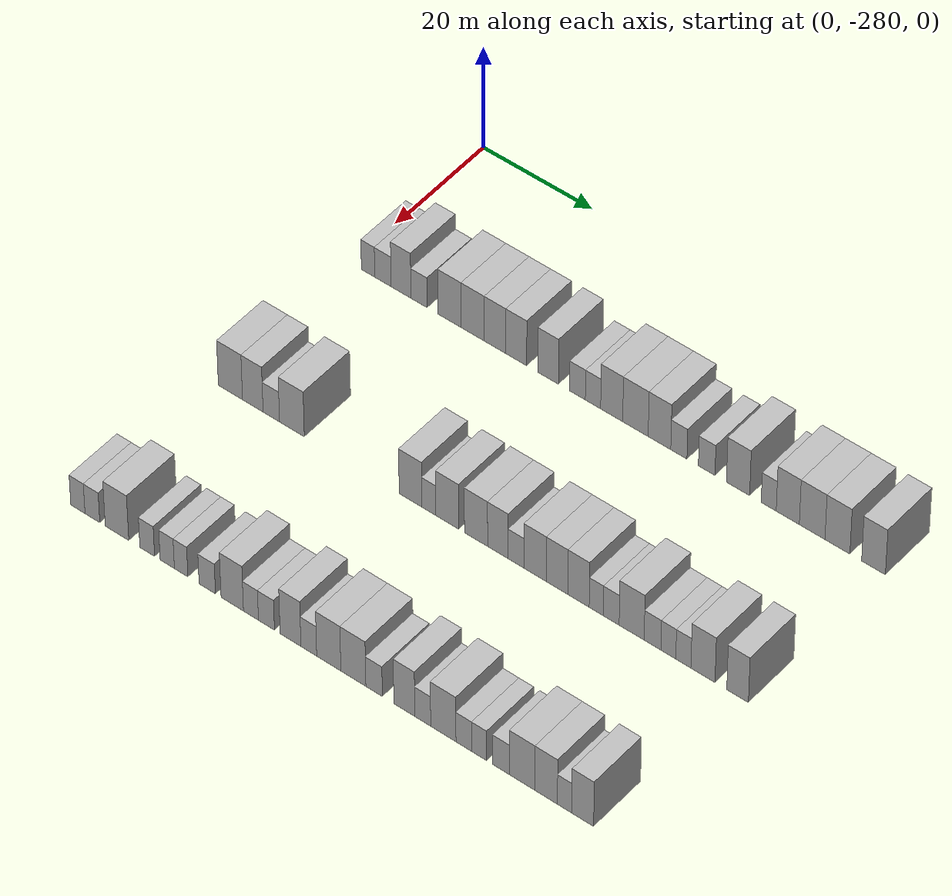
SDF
<sdf version="1.6">
 <world name="default">
  <model name="building_1">
   <static>1</static>
   <pose>25.0000 -276.7724 0 0.000000 0.000000 0.000000</pose>
   <link name="link">
    <pose>0 0 3.00 0 0 0</pose>
    <collision name="collision"><geometry><box><size>10.0000 2.4551 6.0000</size></box></geometry></collision>
    <visual name="visual">
     <cast_shadows>0</cast_shadows>
     <geometry><box><size>10.0000 2.4551 6.0000</size></box></geometry>
     <material>
      <script>
       <uri>model://HANNAS_wall/materials/scripts</uri>
       <uri>model://HANNAS_wall/materials/textures</uri>
       <name>vrc/HANNAS_wall</name>
      </script>
     </material>
    </visual>
   </link>
  </model>
  <model name="building_2">
   <static>1</static>
   <pose>25.0000 -274.0450 0 0.000000 0.000000 0.000000</pose>
   <link name="link">
    <pose>0 0 3.00 0 0 0</pose>
    <collision name="collision"><geometry><box><size>10.0000 2.9998 6.0000</size></box></geometry></collision>
    <visual name="visual">
     <cast_shadows>0</cast_shadows>
     <geometry><box><size>10.0000 2.9998 6.0000</size></box></geometry>
     <material>
      <script>
       <uri>model://HANNAS_wall/materials/scripts</uri>
       <uri>model://HANNAS_wall/materials/textures</uri>
       <name>vrc/HANNAS_wall</name>
      </script>
     </material>
    </visual>
   </link>
  </model>
  <model name="building_3">
   <static>1</static>
   <pose>25.0000 -270.7300 0 0.000000 0.000000 0.000000</pose>
   <link name="link">
    <pose>0 0 4.50 0 0 0</pose>
    <collision name="collision"><geometry><box><size>10.0000 3.6301 9.0000</size></box></geometry></collision>
    <visual name="visual">
     <cast_shadows>0</cast_shadows>
     <geometry><box><size>10.0000 3.6301 9.0000</size></box></geometry>
     <material>
      <script>
       <uri>model://HANNAS_wall/materials/scripts</uri>
       <uri>model://HANNAS_wall/materials/textures</uri>
       <name>vrc/HANNAS_wall</name>
      </script>
     </material>
    </visual>
   </link>
  </model>
  <model name="building_4">
   <static>1</static>
   <pose>25.0000 -267.4291 0 0.000000 0.000000 0.000000</pose>
   <link name="link">
    <pose>0 0 3.00 0 0 0</pose>
    <collision name="collision"><geometry><box><size>10.0000 2.9718 6.0000</size></box></geometry></collision>
    <visual name="visual">
     <cast_shadows>0</cast_shadows>
     <geometry><box><size>10.0000 2.9718 6.0000</size></box></geometry>
     <material>
      <script>
       <uri>model://HANNAS_wall/materials/scripts</uri>
       <uri>model://HANNAS_wall/materials/textures</uri>
       <name>vrc/HANNAS_wall</name>
      </script>
     </material>
    </visual>
   </link>
  </model>
  <model name="building_5">
   <static>1</static>
   <pose>25.0000 -261.8477 0 0.000000 0.000000 0.000000</pose>
   <link name="link">
    <pose>0 0 4.50 0 0 0</pose>
    <collision name="collision"><geometry><box><size>10.0000 4.1910 9.0000</size></box></geometry></collision>
    <visual name="visual">
     <cast_shadows>0</cast_shadows>
     <geometry><box><size>10.0000 4.1910 9.0000</size></box></geometry>
     <material>
      <script>
       <uri>model://HANNAS_wall/materials/scripts</uri>
       <uri>model://HANNAS_wall/materials/textures</uri>
       <name>vrc/HANNAS_wall</name>
      </script>
     </material>
    </visual>
   </link>
  </model>
  <model name="building_6">
   <static>1</static>
   <pose>25.0000 -257.6668 0 0.000000 0.000000 0.000000</pose>
   <link name="link">
    <pose>0 0 4.50 0 0 0</pose>
    <collision name="collision"><geometry><box><size>10.0000 4.1707 9.0000</size></box></geometry></collision>
    <visual name="visual">
     <cast_shadows>0</cast_shadows>
     <geometry><box><size>10.0000 4.1707 9.0000</size></box></geometry>
     <material>
      <script>
       <uri>model://HANNAS_wall/materials/scripts</uri>
       <uri>model://HANNAS_wall/materials/textures</uri>
       <name>vrc/HANNAS_wall</name>
      </script>
     </material>
    </visual>
   </link>
  </model>
  <model name="building_7">
   <static>1</static>
   <pose>25.0000 -253.6388 0 0.000000 0.000000 0.000000</pose>
   <link name="link">
    <pose>0 0 4.50 0 0 0</pose>
    <collision name="collision"><geometry><box><size>10.0000 3.8853 9.0000</size></box></geometry></collision>
    <visual name="visual">
     <cast_shadows>0</cast_shadows>
     <geometry><box><size>10.0000 3.8853 9.0000</size></box></geometry>
     <material>
      <script>
       <uri>model://HANNAS_wall/materials/scripts</uri>
       <uri>model://HANNAS_wall/materials/textures</uri>
       <name>vrc/HANNAS_wall</name>
      </script>
     </material>
    </visual>
   </link>
  </model>
  <model name="building_8">
   <static>1</static>
   <pose>25.0000 -249.8201 0 0.000000 0.000000 0.000000</pose>
   <link name="link">
    <pose>0 0 4.50 0 0 0</pose>
    <collision name="collision"><geometry><box><size>10.0000 3.7521 9.0000</size></box></geometry></collision>
    <visual name="visual">
     <cast_shadows>0</cast_shadows>
     <geometry><box><size>10.0000 3.7521 9.0000</size></box></geometry>
     <material>
      <script>
       <uri>model://HANNAS_wall/materials/scripts</uri>
       <uri>model://HANNAS_wall/materials/textures</uri>
       <name>vrc/HANNAS_wall</name>
      </script>
     </material>
    </visual>
   </link>
  </model>
  <model name="building_9">
   <static>1</static>
   <pose>25.0000 -244.1011 0 0.000000 0.000000 0.000000</pose>
   <link name="link">
    <pose>0 0 4.50 0 0 0</pose>
    <collision name="collision"><geometry><box><size>10.0000 3.6858 9.0000</size></box></geometry></collision>
    <visual name="visual">
     <cast_shadows>0</cast_shadows>
     <geometry><box><size>10.0000 3.6858 9.0000</size></box></geometry>
     <material>
      <script>
       <uri>model://HANNAS_wall/materials/scripts</uri>
       <uri>model://HANNAS_wall/materials/textures</uri>
       <name>vrc/HANNAS_wall</name>
      </script>
     </material>
    </visual>
   </link>
  </model>
  <model name="building_10">
   <static>1</static>
   <pose>25.0000 -238.8640 0 0.000000 0.000000 0.000000</pose>
   <link name="link">
    <pose>0 0 3.00 0 0 0</pose>
    <collision name="collision"><geometry><box><size>10.0000 2.7885 6.0000</size></box></geometry></collision>
    <visual name="visual">
     <cast_shadows>0</cast_shadows>
     <geometry><box><size>10.0000 2.7885 6.0000</size></box></geometry>
     <material>
      <script>
       <uri>model://HANNAS_wall/materials/scripts</uri>
       <uri>model://HANNAS_wall/materials/textures</uri>
       <name>vrc/HANNAS_wall</name>
      </script>
     </material>
    </visual>
   </link>
  </model>
  <model name="building_11">
   <static>1</static>
   <pose>25.0000 -236.1084 0 0.000000 0.000000 0.000000</pose>
   <link name="link">
    <pose>0 0 3.00 0 0 0</pose>
    <collision name="collision"><geometry><box><size>10.0000 2.7226 6.0000</size></box></geometry></collision>
    <visual name="visual">
     <cast_shadows>0</cast_shadows>
     <geometry><box><size>10.0000 2.7226 6.0000</size></box></geometry>
     <material>
      <script>
       <uri>model://HANNAS_wall/materials/scripts</uri>
       <uri>model://HANNAS_wall/materials/textures</uri>
       <name>vrc/HANNAS_wall</name>
      </script>
     </material>
    </visual>
   </link>
  </model>
  <model name="building_12">
   <static>1</static>
   <pose>25.0000 -232.7931 0 0.000000 0.000000 0.000000</pose>
   <link name="link">
    <pose>0 0 4.50 0 0 0</pose>
    <collision name="collision"><geometry><box><size>10.0000 3.9082 9.0000</size></box></geometry></collision>
    <visual name="visual">
     <cast_shadows>0</cast_shadows>
     <geometry><box><size>10.0000 3.9082 9.0000</size></box></geometry>
     <material>
      <script>
       <uri>model://HANNAS_wall/materials/scripts</uri>
       <uri>model://HANNAS_wall/materials/textures</uri>
       <name>vrc/HANNAS_wall</name>
      </script>
     </material>
    </visual>
   </link>
  </model>
  <model name="building_13">
   <static>1</static>
   <pose>25.0000 -228.5908 0 0.000000 0.000000 0.000000</pose>
   <link name="link">
    <pose>0 0 4.50 0 0 0</pose>
    <collision name="collision"><geometry><box><size>10.0000 4.4964 9.0000</size></box></geometry></collision>
    <visual name="visual">
     <cast_shadows>0</cast_shadows>
     <geometry><box><size>10.0000 4.4964 9.0000</size></box></geometry>
     <material>
      <script>
       <uri>model://HANNAS_wall/materials/scripts</uri>
       <uri>model://HANNAS_wall/materials/textures</uri>
       <name>vrc/HANNAS_wall</name>
      </script>
     </material>
    </visual>
   </link>
  </model>
  <model name="building_14">
   <static>1</static>
   <pose>25.0000 -224.3549 0 0.000000 0.000000 0.000000</pose>
   <link name="link">
    <pose>0 0 4.50 0 0 0</pose>
    <collision name="collision"><geometry><box><size>10.0000 3.9754 9.0000</size></box></geometry></collision>
    <visual name="visual">
     <cast_shadows>0</cast_shadows>
     <geometry><box><size>10.0000 3.9754 9.0000</size></box></geometry>
     <material>
      <script>
       <uri>model://HANNAS_wall/materials/scripts</uri>
       <uri>model://HANNAS_wall/materials/textures</uri>
       <name>vrc/HANNAS_wall</name>
      </script>
     </material>
    </visual>
   </link>
  </model>
  <model name="building_15">
   <static>1</static>
   <pose>25.0000 -220.9475 0 0.000000 0.000000 0.000000</pose>
   <link name="link">
    <pose>0 0 3.00 0 0 0</pose>
    <collision name="collision"><geometry><box><size>10.0000 2.8393 6.0000</size></box></geometry></collision>
    <visual name="visual">
     <cast_shadows>0</cast_shadows>
     <geometry><box><size>10.0000 2.8393 6.0000</size></box></geometry>
     <material>
      <script>
       <uri>model://HANNAS_wall/materials/scripts</uri>
       <uri>model://HANNAS_wall/materials/textures</uri>
       <name>vrc/HANNAS_wall</name>
      </script>
     </material>
    </visual>
   </link>
  </model>
  <model name="building_16">
   <static>1</static>
   <pose>25.0000 -216.0794 0 0.000000 0.000000 0.000000</pose>
   <link name="link">
    <pose>0 0 3.00 0 0 0</pose>
    <collision name="collision"><geometry><box><size>10.0000 2.8969 6.0000</size></box></geometry></collision>
    <visual name="visual">
     <cast_shadows>0</cast_shadows>
     <geometry><box><size>10.0000 2.8969 6.0000</size></box></geometry>
     <material>
      <script>
       <uri>model://HANNAS_wall/materials/scripts</uri>
       <uri>model://HANNAS_wall/materials/textures</uri>
       <name>vrc/HANNAS_wall</name>
      </script>
     </material>
    </visual>
   </link>
  </model>
  <model name="building_17">
   <static>1</static>
   <pose>25.0000 -210.6145 0 0.000000 0.000000 0.000000</pose>
   <link name="link">
    <pose>0 0 4.50 0 0 0</pose>
    <collision name="collision"><geometry><box><size>10.0000 4.0329 9.0000</size></box></geometry></collision>
    <visual name="visual">
     <cast_shadows>0</cast_shadows>
     <geometry><box><size>10.0000 4.0329 9.0000</size></box></geometry>
     <material>
      <script>
       <uri>model://HANNAS_wall/materials/scripts</uri>
       <uri>model://HANNAS_wall/materials/textures</uri>
       <name>vrc/HANNAS_wall</name>
      </script>
     </material>
    </visual>
   </link>
  </model>
  <model name="building_18">
   <static>1</static>
   <pose>25.0000 -205.2983 0 0.000000 0.000000 0.000000</pose>
   <link name="link">
    <pose>0 0 3.00 0 0 0</pose>
    <collision name="collision"><geometry><box><size>10.0000 2.5995 6.0000</size></box></geometry></collision>
    <visual name="visual">
     <cast_shadows>0</cast_shadows>
     <geometry><box><size>10.0000 2.5995 6.0000</size></box></geometry>
     <material>
      <script>
       <uri>model://HANNAS_wall/materials/scripts</uri>
       <uri>model://HANNAS_wall/materials/textures</uri>
       <name>vrc/HANNAS_wall</name>
      </script>
     </material>
    </visual>
   </link>
  </model>
  <model name="building_19">
   <static>1</static>
   <pose>25.0000 -202.0076 0 0.000000 0.000000 0.000000</pose>
   <link name="link">
    <pose>0 0 4.50 0 0 0</pose>
    <collision name="collision"><geometry><box><size>10.0000 3.9819 9.0000</size></box></geometry></collision>
    <visual name="visual">
     <cast_shadows>0</cast_shadows>
     <geometry><box><size>10.0000 3.9819 9.0000</size></box></geometry>
     <material>
      <script>
       <uri>model://HANNAS_wall/materials/scripts</uri>
       <uri>model://HANNAS_wall/materials/textures</uri>
       <name>vrc/HANNAS_wall</name>
      </script>
     </material>
    </visual>
   </link>
  </model>
  <model name="building_20">
   <static>1</static>
   <pose>25.0000 -197.8102 0 0.000000 0.000000 0.000000</pose>
   <link name="link">
    <pose>0 0 4.50 0 0 0</pose>
    <collision name="collision"><geometry><box><size>10.0000 4.4129 9.0000</size></box></geometry></collision>
    <visual name="visual">
     <cast_shadows>0</cast_shadows>
     <geometry><box><size>10.0000 4.4129 9.0000</size></box></geometry>
     <material>
      <script>
       <uri>model://HANNAS_wall/materials/scripts</uri>
       <uri>model://HANNAS_wall/materials/textures</uri>
       <name>vrc/HANNAS_wall</name>
      </script>
     </material>
    </visual>
   </link>
  </model>
  <model name="building_21">
   <static>1</static>
   <pose>25.0000 -193.4685 0 0.000000 0.000000 0.000000</pose>
   <link name="link">
    <pose>0 0 4.50 0 0 0</pose>
    <collision name="collision"><geometry><box><size>10.0000 4.2705 9.0000</size></box></geometry></collision>
    <visual name="visual">
     <cast_shadows>0</cast_shadows>
     <geometry><box><size>10.0000 4.2705 9.0000</size></box></geometry>
     <material>
      <script>
       <uri>model://HANNAS_wall/materials/scripts</uri>
       <uri>model://HANNAS_wall/materials/textures</uri>
       <name>vrc/HANNAS_wall</name>
      </script>
     </material>
    </visual>
   </link>
  </model>
  <model name="building_22">
   <static>1</static>
   <pose>25.0000 -187.3111 0 0.000000 0.000000 0.000000</pose>
   <link name="link">
    <pose>0 0 4.50 0 0 0</pose>
    <collision name="collision"><geometry><box><size>10.0000 4.0444 9.0000</size></box></geometry></collision>
    <visual name="visual">
     <cast_shadows>0</cast_shadows>
     <geometry><box><size>10.0000 4.0444 9.0000</size></box></geometry>
     <material>
      <script>
       <uri>model://HANNAS_wall/materials/scripts</uri>
       <uri>model://HANNAS_wall/materials/textures</uri>
       <name>vrc/HANNAS_wall</name>
      </script>
     </material>
    </visual>
   </link>
  </model>
  <model name="building_140">
   <static>1</static>
   <pose>55.0000 -276.7888 0 0.000000 0.000000 0.000000</pose>
   <link name="link">
    <pose>0 0 4.50 0 0 0</pose>
    <collision name="collision"><geometry><box><size>10.0000 4.4224 9.0000</size></box></geometry></collision>
    <visual name="visual">
     <cast_shadows>0</cast_shadows>
     <geometry><box><size>10.0000 4.4224 9.0000</size></box></geometry>
     <material>
      <script>
       <uri>model://HANNAS_wall/materials/scripts</uri>
       <uri>model://HANNAS_wall/materials/textures</uri>
       <name>vrc/HANNAS_wall</name>
      </script>
     </material>
    </visual>
   </link>
  </model>
  <model name="building_141">
   <static>1</static>
   <pose>55.0000 -272.7049 0 0.000000 0.000000 0.000000</pose>
   <link name="link">
    <pose>0 0 4.50 0 0 0</pose>
    <collision name="collision"><geometry><box><size>10.0000 3.7455 9.0000</size></box></geometry></collision>
    <visual name="visual">
     <cast_shadows>0</cast_shadows>
     <geometry><box><size>10.0000 3.7455 9.0000</size></box></geometry>
     <material>
      <script>
       <uri>model://HANNAS_wall/materials/scripts</uri>
       <uri>model://HANNAS_wall/materials/textures</uri>
       <name>vrc/HANNAS_wall</name>
      </script>
     </material>
    </visual>
   </link>
  </model>
  <model name="building_142">
   <static>1</static>
   <pose>55.0000 -269.3329 0 0.000000 0.000000 0.000000</pose>
   <link name="link">
    <pose>0 0 3.00 0 0 0</pose>
    <collision name="collision"><geometry><box><size>10.0000 2.9984 6.0000</size></box></geometry></collision>
    <visual name="visual">
     <cast_shadows>0</cast_shadows>
     <geometry><box><size>10.0000 2.9984 6.0000</size></box></geometry>
     <material>
      <script>
       <uri>model://HANNAS_wall/materials/scripts</uri>
       <uri>model://HANNAS_wall/materials/textures</uri>
       <name>vrc/HANNAS_wall</name>
      </script>
     </material>
    </visual>
   </link>
  </model>
  <model name="building_143">
   <static>1</static>
   <pose>55.0000 -265.5855 0 0.000000 0.000000 0.000000</pose>
   <link name="link">
    <pose>0 0 4.50 0 0 0</pose>
    <collision name="collision"><geometry><box><size>10.0000 4.4965 9.0000</size></box></geometry></collision>
    <visual name="visual">
     <cast_shadows>0</cast_shadows>
     <geometry><box><size>10.0000 4.4965 9.0000</size></box></geometry>
     <material>
      <script>
       <uri>model://HANNAS_wall/materials/scripts</uri>
       <uri>model://HANNAS_wall/materials/textures</uri>
       <name>vrc/HANNAS_wall</name>
      </script>
     </material>
    </visual>
   </link>
  </model>
  <model name="building_144">
   <static>1</static>
   <pose>55.0000 -244.2856 0 0.000000 0.000000 0.000000</pose>
   <link name="link">
    <pose>0 0 4.50 0 0 0</pose>
    <collision name="collision"><geometry><box><size>10.0000 4.0345 9.0000</size></box></geometry></collision>
    <visual name="visual">
     <cast_shadows>0</cast_shadows>
     <geometry><box><size>10.0000 4.0345 9.0000</size></box></geometry>
     <material>
      <script>
       <uri>model://HANNAS_wall/materials/scripts</uri>
       <uri>model://HANNAS_wall/materials/textures</uri>
       <name>vrc/HANNAS_wall</name>
      </script>
     </material>
    </visual>
   </link>
  </model>
  <model name="building_145">
   <static>1</static>
   <pose>55.0000 -241.0254 0 0.000000 0.000000 0.000000</pose>
   <link name="link">
    <pose>0 0 3.00 0 0 0</pose>
    <collision name="collision"><geometry><box><size>10.0000 2.4859 6.0000</size></box></geometry></collision>
    <visual name="visual">
     <cast_shadows>0</cast_shadows>
     <geometry><box><size>10.0000 2.4859 6.0000</size></box></geometry>
     <material>
      <script>
       <uri>model://HANNAS_wall/materials/scripts</uri>
       <uri>model://HANNAS_wall/materials/textures</uri>
       <name>vrc/HANNAS_wall</name>
      </script>
     </material>
    </visual>
   </link>
  </model>
  <model name="building_146">
   <static>1</static>
   <pose>55.0000 -237.7533 0 0.000000 0.000000 0.000000</pose>
   <link name="link">
    <pose>0 0 4.50 0 0 0</pose>
    <collision name="collision"><geometry><box><size>10.0000 4.0582 9.0000</size></box></geometry></collision>
    <visual name="visual">
     <cast_shadows>0</cast_shadows>
     <geometry><box><size>10.0000 4.0582 9.0000</size></box></geometry>
     <material>
      <script>
       <uri>model://HANNAS_wall/materials/scripts</uri>
       <uri>model://HANNAS_wall/materials/textures</uri>
       <name>vrc/HANNAS_wall</name>
      </script>
     </material>
    </visual>
   </link>
  </model>
  <model name="building_147">
   <static>1</static>
   <pose>55.0000 -232.6905 0 0.000000 0.000000 0.000000</pose>
   <link name="link">
    <pose>0 0 4.50 0 0 0</pose>
    <collision name="collision"><geometry><box><size>10.0000 4.0676 9.0000</size></box></geometry></collision>
    <visual name="visual">
     <cast_shadows>0</cast_shadows>
     <geometry><box><size>10.0000 4.0676 9.0000</size></box></geometry>
     <material>
      <script>
       <uri>model://HANNAS_wall/materials/scripts</uri>
       <uri>model://HANNAS_wall/materials/textures</uri>
       <name>vrc/HANNAS_wall</name>
      </script>
     </material>
    </visual>
   </link>
  </model>
  <model name="building_148">
   <static>1</static>
   <pose>55.0000 -228.8450 0 0.000000 0.000000 0.000000</pose>
   <link name="link">
    <pose>0 0 4.50 0 0 0</pose>
    <collision name="collision"><geometry><box><size>10.0000 3.6233 9.0000</size></box></geometry></collision>
    <visual name="visual">
     <cast_shadows>0</cast_shadows>
     <geometry><box><size>10.0000 3.6233 9.0000</size></box></geometry>
     <material>
      <script>
       <uri>model://HANNAS_wall/materials/scripts</uri>
       <uri>model://HANNAS_wall/materials/textures</uri>
       <name>vrc/HANNAS_wall</name>
      </script>
     </material>
    </visual>
   </link>
  </model>
  <model name="building_149">
   <static>1</static>
   <pose>55.0000 -225.6634 0 0.000000 0.000000 0.000000</pose>
   <link name="link">
    <pose>0 0 3.00 0 0 0</pose>
    <collision name="collision"><geometry><box><size>10.0000 2.7401 6.0000</size></box></geometry></collision>
    <visual name="visual">
     <cast_shadows>0</cast_shadows>
     <geometry><box><size>10.0000 2.7401 6.0000</size></box></geometry>
     <material>
      <script>
       <uri>model://HANNAS_wall/materials/scripts</uri>
       <uri>model://HANNAS_wall/materials/textures</uri>
       <name>vrc/HANNAS_wall</name>
      </script>
     </material>
    </visual>
   </link>
  </model>
  <model name="building_150">
   <static>1</static>
   <pose>55.0000 -222.3528 0 0.000000 0.000000 0.000000</pose>
   <link name="link">
    <pose>0 0 4.50 0 0 0</pose>
    <collision name="collision"><geometry><box><size>10.0000 3.8811 9.0000</size></box></geometry></collision>
    <visual name="visual">
     <cast_shadows>0</cast_shadows>
     <geometry><box><size>10.0000 3.8811 9.0000</size></box></geometry>
     <material>
      <script>
       <uri>model://HANNAS_wall/materials/scripts</uri>
       <uri>model://HANNAS_wall/materials/textures</uri>
       <name>vrc/HANNAS_wall</name>
      </script>
     </material>
    </visual>
   </link>
  </model>
  <model name="building_151">
   <static>1</static>
   <pose>55.0000 -218.5354 0 0.000000 0.000000 0.000000</pose>
   <link name="link">
    <pose>0 0 4.50 0 0 0</pose>
    <collision name="collision"><geometry><box><size>10.0000 3.7537 9.0000</size></box></geometry></collision>
    <visual name="visual">
     <cast_shadows>0</cast_shadows>
     <geometry><box><size>10.0000 3.7537 9.0000</size></box></geometry>
     <material>
      <script>
       <uri>model://HANNAS_wall/materials/scripts</uri>
       <uri>model://HANNAS_wall/materials/textures</uri>
       <name>vrc/HANNAS_wall</name>
      </script>
     </material>
    </visual>
   </link>
  </model>
  <model name="building_152">
   <static>1</static>
   <pose>55.0000 -214.7939 0 0.000000 0.000000 0.000000</pose>
   <link name="link">
    <pose>0 0 4.50 0 0 0</pose>
    <collision name="collision"><geometry><box><size>10.0000 3.7292 9.0000</size></box></geometry></collision>
    <visual name="visual">
     <cast_shadows>0</cast_shadows>
     <geometry><box><size>10.0000 3.7292 9.0000</size></box></geometry>
     <material>
      <script>
       <uri>model://HANNAS_wall/materials/scripts</uri>
       <uri>model://HANNAS_wall/materials/textures</uri>
       <name>vrc/HANNAS_wall</name>
      </script>
     </material>
    </visual>
   </link>
  </model>
  <model name="building_153">
   <static>1</static>
   <pose>55.0000 -211.7141 0 0.000000 0.000000 0.000000</pose>
   <link name="link">
    <pose>0 0 3.00 0 0 0</pose>
    <collision name="collision"><geometry><box><size>10.0000 2.4303 6.0000</size></box></geometry></collision>
    <visual name="visual">
     <cast_shadows>0</cast_shadows>
     <geometry><box><size>10.0000 2.4303 6.0000</size></box></geometry>
     <material>
      <script>
       <uri>model://HANNAS_wall/materials/scripts</uri>
       <uri>model://HANNAS_wall/materials/textures</uri>
       <name>vrc/HANNAS_wall</name>
      </script>
     </material>
    </visual>
   </link>
  </model>
  <model name="building_154">
   <static>1</static>
   <pose>55.0000 -209.1279 0 0.000000 0.000000 0.000000</pose>
   <link name="link">
    <pose>0 0 3.00 0 0 0</pose>
    <collision name="collision"><geometry><box><size>10.0000 2.7421 6.0000</size></box></geometry></collision>
    <visual name="visual">
     <cast_shadows>0</cast_shadows>
     <geometry><box><size>10.0000 2.7421 6.0000</size></box></geometry>
     <material>
      <script>
       <uri>model://HANNAS_wall/materials/scripts</uri>
       <uri>model://HANNAS_wall/materials/textures</uri>
       <name>vrc/HANNAS_wall</name>
      </script>
     </material>
    </visual>
   </link>
  </model>
  <model name="building_155">
   <static>1</static>
   <pose>55.0000 -205.6067 0 0.000000 0.000000 0.000000</pose>
   <link name="link">
    <pose>0 0 4.50 0 0 0</pose>
    <collision name="collision"><geometry><box><size>10.0000 4.3004 9.0000</size></box></geometry></collision>
    <visual name="visual">
     <cast_shadows>0</cast_shadows>
     <geometry><box><size>10.0000 4.3004 9.0000</size></box></geometry>
     <material>
      <script>
       <uri>model://HANNAS_wall/materials/scripts</uri>
       <uri>model://HANNAS_wall/materials/textures</uri>
       <name>vrc/HANNAS_wall</name>
      </script>
     </material>
    </visual>
   </link>
  </model>
  <model name="building_156">
   <static>1</static>
   <pose>55.0000 -202.0225 0 0.000000 0.000000 0.000000</pose>
   <link name="link">
    <pose>0 0 3.00 0 0 0</pose>
    <collision name="collision"><geometry><box><size>10.0000 2.8679 6.0000</size></box></geometry></collision>
    <visual name="visual">
     <cast_shadows>0</cast_shadows>
     <geometry><box><size>10.0000 2.8679 6.0000</size></box></geometry>
     <material>
      <script>
       <uri>model://HANNAS_wall/materials/scripts</uri>
       <uri>model://HANNAS_wall/materials/textures</uri>
       <name>vrc/HANNAS_wall</name>
      </script>
     </material>
    </visual>
   </link>
  </model>
  <model name="building_157">
   <static>1</static>
   <pose>55.0000 -199.3125 0 0.000000 0.000000 0.000000</pose>
   <link name="link">
    <pose>0 0 3.00 0 0 0</pose>
    <collision name="collision"><geometry><box><size>10.0000 2.5521 6.0000</size></box></geometry></collision>
    <visual name="visual">
     <cast_shadows>0</cast_shadows>
     <geometry><box><size>10.0000 2.5521 6.0000</size></box></geometry>
     <material>
      <script>
       <uri>model://HANNAS_wall/materials/scripts</uri>
       <uri>model://HANNAS_wall/materials/textures</uri>
       <name>vrc/HANNAS_wall</name>
      </script>
     </material>
    </visual>
   </link>
  </model>
  <model name="building_158">
   <static>1</static>
   <pose>55.0000 -196.7479 0 0.000000 0.000000 0.000000</pose>
   <link name="link">
    <pose>0 0 3.00 0 0 0</pose>
    <collision name="collision"><geometry><box><size>10.0000 2.5771 6.0000</size></box></geometry></collision>
    <visual name="visual">
     <cast_shadows>0</cast_shadows>
     <geometry><box><size>10.0000 2.5771 6.0000</size></box></geometry>
     <material>
      <script>
       <uri>model://HANNAS_wall/materials/scripts</uri>
       <uri>model://HANNAS_wall/materials/textures</uri>
       <name>vrc/HANNAS_wall</name>
      </script>
     </material>
    </visual>
   </link>
  </model>
  <model name="building_159">
   <static>1</static>
   <pose>55.0000 -193.4083 0 0.000000 0.000000 0.000000</pose>
   <link name="link">
    <pose>0 0 4.50 0 0 0</pose>
    <collision name="collision"><geometry><box><size>10.0000 4.1020 9.0000</size></box></geometry></collision>
    <visual name="visual">
     <cast_shadows>0</cast_shadows>
     <geometry><box><size>10.0000 4.1020 9.0000</size></box></geometry>
     <material>
      <script>
       <uri>model://HANNAS_wall/materials/scripts</uri>
       <uri>model://HANNAS_wall/materials/textures</uri>
       <name>vrc/HANNAS_wall</name>
      </script>
     </material>
    </visual>
   </link>
  </model>
  <model name="building_160">
   <static>1</static>
   <pose>55.0000 -187.5261 0 0.000000 0.000000 0.000000</pose>
   <link name="link">
    <pose>0 0 4.50 0 0 0</pose>
    <collision name="collision"><geometry><box><size>10.0000 3.6625 9.0000</size></box></geometry></collision>
    <visual name="visual">
     <cast_shadows>0</cast_shadows>
     <geometry><box><size>10.0000 3.6625 9.0000</size></box></geometry>
     <material>
      <script>
       <uri>model://HANNAS_wall/materials/scripts</uri>
       <uri>model://HANNAS_wall/materials/textures</uri>
       <name>vrc/HANNAS_wall</name>
      </script>
     </material>
    </visual>
   </link>
  </model>
  <model name="building_266">
   <static>1</static>
   <pose>85.0000 -278.7054 0 0.000000 0.000000 0.000000</pose>
   <link name="link">
    <pose>0 0 3.00 0 0 0</pose>
    <collision name="collision"><geometry><box><size>10.0000 2.5892 6.0000</size></box></geometry></collision>
    <visual name="visual">
     <cast_shadows>0</cast_shadows>
     <geometry><box><size>10.0000 2.5892 6.0000</size></box></geometry>
     <material>
      <script>
       <uri>model://HANNAS_wall/materials/scripts</uri>
       <uri>model://HANNAS_wall/materials/textures</uri>
       <name>vrc/HANNAS_wall</name>
      </script>
     </material>
    </visual>
   </link>
  </model>
  <model name="building_267">
   <static>1</static>
   <pose>85.0000 -276.0666 0 0.000000 0.000000 0.000000</pose>
   <link name="link">
    <pose>0 0 3.00 0 0 0</pose>
    <collision name="collision"><geometry><box><size>10.0000 2.6883 6.0000</size></box></geometry></collision>
    <visual name="visual">
     <cast_shadows>0</cast_shadows>
     <geometry><box><size>10.0000 2.6883 6.0000</size></box></geometry>
     <material>
      <script>
       <uri>model://HANNAS_wall/materials/scripts</uri>
       <uri>model://HANNAS_wall/materials/textures</uri>
       <name>vrc/HANNAS_wall</name>
      </script>
     </material>
    </visual>
   </link>
  </model>
  <model name="building_268">
   <static>1</static>
   <pose>85.0000 -271.5883 0 0.000000 0.000000 0.000000</pose>
   <link name="link">
    <pose>0 0 4.50 0 0 0</pose>
    <collision name="collision"><geometry><box><size>10.0000 4.2683 9.0000</size></box></geometry></collision>
    <visual name="visual">
     <cast_shadows>0</cast_shadows>
     <geometry><box><size>10.0000 4.2683 9.0000</size></box></geometry>
     <material>
      <script>
       <uri>model://HANNAS_wall/materials/scripts</uri>
       <uri>model://HANNAS_wall/materials/textures</uri>
       <name>vrc/HANNAS_wall</name>
      </script>
     </material>
    </visual>
   </link>
  </model>
  <model name="building_269">
   <static>1</static>
   <pose>85.0000 -266.1251 0 0.000000 0.000000 0.000000</pose>
   <link name="link">
    <pose>0 0 3.00 0 0 0</pose>
    <collision name="collision"><geometry><box><size>10.0000 2.6581 6.0000</size></box></geometry></collision>
    <visual name="visual">
     <cast_shadows>0</cast_shadows>
     <geometry><box><size>10.0000 2.6581 6.0000</size></box></geometry>
     <material>
      <script>
       <uri>model://HANNAS_wall/materials/scripts</uri>
       <uri>model://HANNAS_wall/materials/textures</uri>
       <name>vrc/HANNAS_wall</name>
      </script>
     </material>
    </visual>
   </link>
  </model>
  <model name="building_270">
   <static>1</static>
   <pose>85.0000 -262.5155 0 0.000000 0.000000 0.000000</pose>
   <link name="link">
    <pose>0 0 3.00 0 0 0</pose>
    <collision name="collision"><geometry><box><size>10.0000 2.5612 6.0000</size></box></geometry></collision>
    <visual name="visual">
     <cast_shadows>0</cast_shadows>
     <geometry><box><size>10.0000 2.5612 6.0000</size></box></geometry>
     <material>
      <script>
       <uri>model://HANNAS_wall/materials/scripts</uri>
       <uri>model://HANNAS_wall/materials/textures</uri>
       <name>vrc/HANNAS_wall</name>
      </script>
     </material>
    </visual>
   </link>
  </model>
  <model name="building_271">
   <static>1</static>
   <pose>85.0000 -260.0222 0 0.000000 0.000000 0.000000</pose>
   <link name="link">
    <pose>0 0 3.00 0 0 0</pose>
    <collision name="collision"><geometry><box><size>10.0000 2.4253 6.0000</size></box></geometry></collision>
    <visual name="visual">
     <cast_shadows>0</cast_shadows>
     <geometry><box><size>10.0000 2.4253 6.0000</size></box></geometry>
     <material>
      <script>
       <uri>model://HANNAS_wall/materials/scripts</uri>
       <uri>model://HANNAS_wall/materials/textures</uri>
       <name>vrc/HANNAS_wall</name>
      </script>
     </material>
    </visual>
   </link>
  </model>
  <model name="building_272">
   <static>1</static>
   <pose>85.0000 -255.3435 0 0.000000 0.000000 0.000000</pose>
   <link name="link">
    <pose>0 0 3.00 0 0 0</pose>
    <collision name="collision"><geometry><box><size>10.0000 2.9322 6.0000</size></box></geometry></collision>
    <visual name="visual">
     <cast_shadows>0</cast_shadows>
     <geometry><box><size>10.0000 2.9322 6.0000</size></box></geometry>
     <material>
      <script>
       <uri>model://HANNAS_wall/materials/scripts</uri>
       <uri>model://HANNAS_wall/materials/textures</uri>
       <name>vrc/HANNAS_wall</name>
      </script>
     </material>
    </visual>
   </link>
  </model>
  <model name="building_273">
   <static>1</static>
   <pose>85.0000 -250.8840 0 0.000000 0.000000 0.000000</pose>
   <link name="link">
    <pose>0 0 4.50 0 0 0</pose>
    <collision name="collision"><geometry><box><size>10.0000 3.9868 9.0000</size></box></geometry></collision>
    <visual name="visual">
     <cast_shadows>0</cast_shadows>
     <geometry><box><size>10.0000 3.9868 9.0000</size></box></geometry>
     <material>
      <script>
       <uri>model://HANNAS_wall/materials/scripts</uri>
       <uri>model://HANNAS_wall/materials/textures</uri>
       <name>vrc/HANNAS_wall</name>
      </script>
     </material>
    </visual>
   </link>
  </model>
  <model name="building_274">
   <static>1</static>
   <pose>85.0000 -247.5622 0 0.000000 0.000000 0.000000</pose>
   <link name="link">
    <pose>0 0 3.00 0 0 0</pose>
    <collision name="collision"><geometry><box><size>10.0000 2.6568 6.0000</size></box></geometry></collision>
    <visual name="visual">
     <cast_shadows>0</cast_shadows>
     <geometry><box><size>10.0000 2.6568 6.0000</size></box></geometry>
     <material>
      <script>
       <uri>model://HANNAS_wall/materials/scripts</uri>
       <uri>model://HANNAS_wall/materials/textures</uri>
       <name>vrc/HANNAS_wall</name>
      </script>
     </material>
    </visual>
   </link>
  </model>
  <model name="building_275">
   <static>1</static>
   <pose>85.0000 -244.8131 0 0.000000 0.000000 0.000000</pose>
   <link name="link">
    <pose>0 0 3.00 0 0 0</pose>
    <collision name="collision"><geometry><box><size>10.0000 2.8415 6.0000</size></box></geometry></collision>
    <visual name="visual">
     <cast_shadows>0</cast_shadows>
     <geometry><box><size>10.0000 2.8415 6.0000</size></box></geometry>
     <material>
      <script>
       <uri>model://HANNAS_wall/materials/scripts</uri>
       <uri>model://HANNAS_wall/materials/textures</uri>
       <name>vrc/HANNAS_wall</name>
      </script>
     </material>
    </visual>
   </link>
  </model>
  <model name="building_276">
   <static>1</static>
   <pose>85.0000 -240.5572 0 0.000000 0.000000 0.000000</pose>
   <link name="link">
    <pose>0 0 4.50 0 0 0</pose>
    <collision name="collision"><geometry><box><size>10.0000 3.6703 9.0000</size></box></geometry></collision>
    <visual name="visual">
     <cast_shadows>0</cast_shadows>
     <geometry><box><size>10.0000 3.6703 9.0000</size></box></geometry>
     <material>
      <script>
       <uri>model://HANNAS_wall/materials/scripts</uri>
       <uri>model://HANNAS_wall/materials/textures</uri>
       <name>vrc/HANNAS_wall</name>
      </script>
     </material>
    </visual>
   </link>
  </model>
  <model name="building_277">
   <static>1</static>
   <pose>85.0000 -237.3363 0 0.000000 0.000000 0.000000</pose>
   <link name="link">
    <pose>0 0 3.00 0 0 0</pose>
    <collision name="collision"><geometry><box><size>10.0000 2.7714 6.0000</size></box></geometry></collision>
    <visual name="visual">
     <cast_shadows>0</cast_shadows>
     <geometry><box><size>10.0000 2.7714 6.0000</size></box></geometry>
     <material>
      <script>
       <uri>model://HANNAS_wall/materials/scripts</uri>
       <uri>model://HANNAS_wall/materials/textures</uri>
       <name>vrc/HANNAS_wall</name>
      </script>
     </material>
    </visual>
   </link>
  </model>
  <model name="building_278">
   <static>1</static>
   <pose>85.0000 -233.8324 0 0.000000 0.000000 0.000000</pose>
   <link name="link">
    <pose>0 0 4.50 0 0 0</pose>
    <collision name="collision"><geometry><box><size>10.0000 4.2365 9.0000</size></box></geometry></collision>
    <visual name="visual">
     <cast_shadows>0</cast_shadows>
     <geometry><box><size>10.0000 4.2365 9.0000</size></box></geometry>
     <material>
      <script>
       <uri>model://HANNAS_wall/materials/scripts</uri>
       <uri>model://HANNAS_wall/materials/textures</uri>
       <name>vrc/HANNAS_wall</name>
      </script>
     </material>
    </visual>
   </link>
  </model>
  <model name="building_279">
   <static>1</static>
   <pose>85.0000 -229.5286 0 0.000000 0.000000 0.000000</pose>
   <link name="link">
    <pose>0 0 4.50 0 0 0</pose>
    <collision name="collision"><geometry><box><size>10.0000 4.3711 9.0000</size></box></geometry></collision>
    <visual name="visual">
     <cast_shadows>0</cast_shadows>
     <geometry><box><size>10.0000 4.3711 9.0000</size></box></geometry>
     <material>
      <script>
       <uri>model://HANNAS_wall/materials/scripts</uri>
       <uri>model://HANNAS_wall/materials/textures</uri>
       <name>vrc/HANNAS_wall</name>
      </script>
     </material>
    </visual>
   </link>
  </model>
  <model name="building_280">
   <static>1</static>
   <pose>85.0000 -225.9082 0 0.000000 0.000000 0.000000</pose>
   <link name="link">
    <pose>0 0 3.00 0 0 0</pose>
    <collision name="collision"><geometry><box><size>10.0000 2.8696 6.0000</size></box></geometry></collision>
    <visual name="visual">
     <cast_shadows>0</cast_shadows>
     <geometry><box><size>10.0000 2.8696 6.0000</size></box></geometry>
     <material>
      <script>
       <uri>model://HANNAS_wall/materials/scripts</uri>
       <uri>model://HANNAS_wall/materials/textures</uri>
       <name>vrc/HANNAS_wall</name>
      </script>
     </material>
    </visual>
   </link>
  </model>
  <model name="building_281">
   <static>1</static>
   <pose>85.0000 -220.6560 0 0.000000 0.000000 0.000000</pose>
   <link name="link">
    <pose>0 0 4.50 0 0 0</pose>
    <collision name="collision"><geometry><box><size>10.0000 3.6347 9.0000</size></box></geometry></collision>
    <visual name="visual">
     <cast_shadows>0</cast_shadows>
     <geometry><box><size>10.0000 3.6347 9.0000</size></box></geometry>
     <material>
      <script>
       <uri>model://HANNAS_wall/materials/scripts</uri>
       <uri>model://HANNAS_wall/materials/textures</uri>
       <name>vrc/HANNAS_wall</name>
      </script>
     </material>
    </visual>
   </link>
  </model>
  <model name="building_282">
   <static>1</static>
   <pose>85.0000 -217.4683 0 0.000000 0.000000 0.000000</pose>
   <link name="link">
    <pose>0 0 3.00 0 0 0</pose>
    <collision name="collision"><geometry><box><size>10.0000 2.7407 6.0000</size></box></geometry></collision>
    <visual name="visual">
     <cast_shadows>0</cast_shadows>
     <geometry><box><size>10.0000 2.7407 6.0000</size></box></geometry>
     <material>
      <script>
       <uri>model://HANNAS_wall/materials/scripts</uri>
       <uri>model://HANNAS_wall/materials/textures</uri>
       <name>vrc/HANNAS_wall</name>
      </script>
     </material>
    </visual>
   </link>
  </model>
  <model name="building_283">
   <static>1</static>
   <pose>85.0000 -213.9200 0 0.000000 0.000000 0.000000</pose>
   <link name="link">
    <pose>0 0 4.50 0 0 0</pose>
    <collision name="collision"><geometry><box><size>10.0000 4.3559 9.0000</size></box></geometry></collision>
    <visual name="visual">
     <cast_shadows>0</cast_shadows>
     <geometry><box><size>10.0000 4.3559 9.0000</size></box></geometry>
     <material>
      <script>
       <uri>model://HANNAS_wall/materials/scripts</uri>
       <uri>model://HANNAS_wall/materials/textures</uri>
       <name>vrc/HANNAS_wall</name>
      </script>
     </material>
    </visual>
   </link>
  </model>
  <model name="building_284">
   <static>1</static>
   <pose>85.0000 -210.3885 0 0.000000 0.000000 0.000000</pose>
   <link name="link">
    <pose>0 0 3.00 0 0 0</pose>
    <collision name="collision"><geometry><box><size>10.0000 2.7071 6.0000</size></box></geometry></collision>
    <visual name="visual">
     <cast_shadows>0</cast_shadows>
     <geometry><box><size>10.0000 2.7071 6.0000</size></box></geometry>
     <material>
      <script>
       <uri>model://HANNAS_wall/materials/scripts</uri>
       <uri>model://HANNAS_wall/materials/textures</uri>
       <name>vrc/HANNAS_wall</name>
      </script>
     </material>
    </visual>
   </link>
  </model>
  <model name="building_285">
   <static>1</static>
   <pose>85.0000 -207.7554 0 0.000000 0.000000 0.000000</pose>
   <link name="link">
    <pose>0 0 3.00 0 0 0</pose>
    <collision name="collision"><geometry><box><size>10.0000 2.5591 6.0000</size></box></geometry></collision>
    <visual name="visual">
     <cast_shadows>0</cast_shadows>
     <geometry><box><size>10.0000 2.5591 6.0000</size></box></geometry>
     <material>
      <script>
       <uri>model://HANNAS_wall/materials/scripts</uri>
       <uri>model://HANNAS_wall/materials/textures</uri>
       <name>vrc/HANNAS_wall</name>
      </script>
     </material>
    </visual>
   </link>
  </model>
  <model name="building_286">
   <static>1</static>
   <pose>85.0000 -204.0375 0 0.000000 0.000000 0.000000</pose>
   <link name="link">
    <pose>0 0 3.00 0 0 0</pose>
    <collision name="collision"><geometry><box><size>10.0000 2.8767 6.0000</size></box></geometry></collision>
    <visual name="visual">
     <cast_shadows>0</cast_shadows>
     <geometry><box><size>10.0000 2.8767 6.0000</size></box></geometry>
     <material>
      <script>
       <uri>model://HANNAS_wall/materials/scripts</uri>
       <uri>model://HANNAS_wall/materials/textures</uri>
       <name>vrc/HANNAS_wall</name>
      </script>
     </material>
    </visual>
   </link>
  </model>
  <model name="building_287">
   <static>1</static>
   <pose>85.0000 -200.4356 0 0.000000 0.000000 0.000000</pose>
   <link name="link">
    <pose>0 0 4.50 0 0 0</pose>
    <collision name="collision"><geometry><box><size>10.0000 4.3271 9.0000</size></box></geometry></collision>
    <visual name="visual">
     <cast_shadows>0</cast_shadows>
     <geometry><box><size>10.0000 4.3271 9.0000</size></box></geometry>
     <material>
      <script>
       <uri>model://HANNAS_wall/materials/scripts</uri>
       <uri>model://HANNAS_wall/materials/textures</uri>
       <name>vrc/HANNAS_wall</name>
      </script>
     </material>
    </visual>
   </link>
  </model>
  <model name="building_288">
   <static>1</static>
   <pose>85.0000 -196.3572 0 0.000000 0.000000 0.000000</pose>
   <link name="link">
    <pose>0 0 4.50 0 0 0</pose>
    <collision name="collision"><geometry><box><size>10.0000 3.8298 9.0000</size></box></geometry></collision>
    <visual name="visual">
     <cast_shadows>0</cast_shadows>
     <geometry><box><size>10.0000 3.8298 9.0000</size></box></geometry>
     <material>
      <script>
       <uri>model://HANNAS_wall/materials/scripts</uri>
       <uri>model://HANNAS_wall/materials/textures</uri>
       <name>vrc/HANNAS_wall</name>
      </script>
     </material>
    </visual>
   </link>
  </model>
  <model name="building_289">
   <static>1</static>
   <pose>85.0000 -193.2285 0 0.000000 0.000000 0.000000</pose>
   <link name="link">
    <pose>0 0 3.00 0 0 0</pose>
    <collision name="collision"><geometry><box><size>10.0000 2.4275 6.0000</size></box></geometry></collision>
    <visual name="visual">
     <cast_shadows>0</cast_shadows>
     <geometry><box><size>10.0000 2.4275 6.0000</size></box></geometry>
     <material>
      <script>
       <uri>model://HANNAS_wall/materials/scripts</uri>
       <uri>model://HANNAS_wall/materials/textures</uri>
       <name>vrc/HANNAS_wall</name>
      </script>
     </material>
    </visual>
   </link>
  </model>
  <model name="building_290">
   <static>1</static>
   <pose>85.0000 -190.1712 0 0.000000 0.000000 0.000000</pose>
   <link name="link">
    <pose>0 0 4.50 0 0 0</pose>
    <collision name="collision"><geometry><box><size>10.0000 3.6872 9.0000</size></box></geometry></collision>
    <visual name="visual">
     <cast_shadows>0</cast_shadows>
     <geometry><box><size>10.0000 3.6872 9.0000</size></box></geometry>
     <material>
      <script>
       <uri>model://HANNAS_wall/materials/scripts</uri>
       <uri>model://HANNAS_wall/materials/textures</uri>
       <name>vrc/HANNAS_wall</name>
      </script>
     </material>
    </visual>
   </link>
  </model>
 </world>
</sdf>
